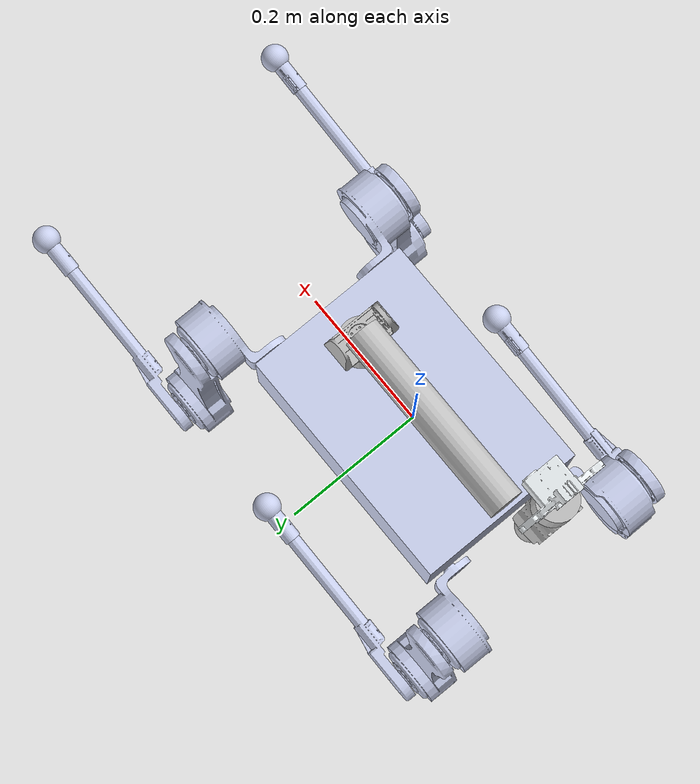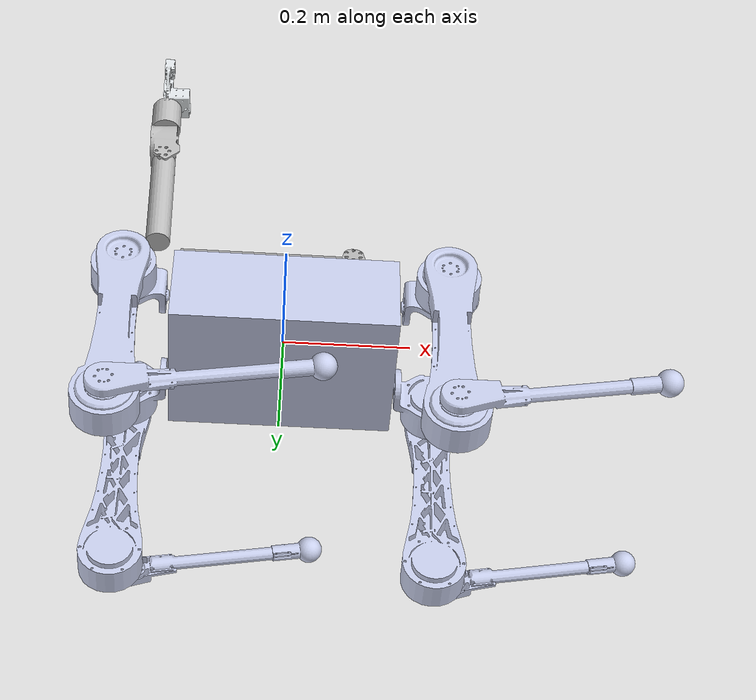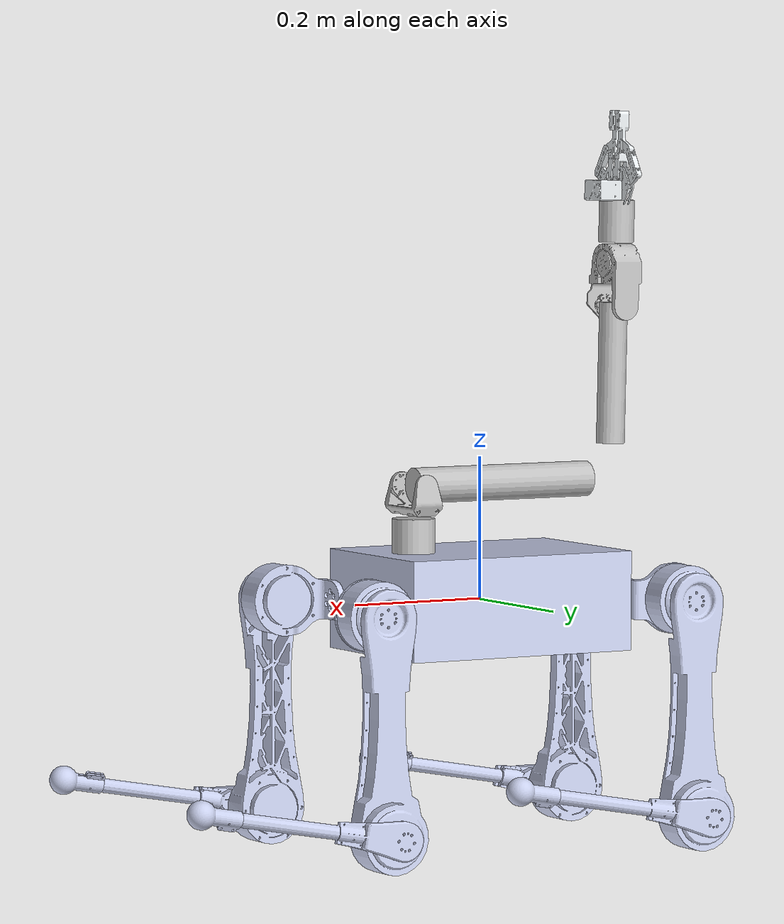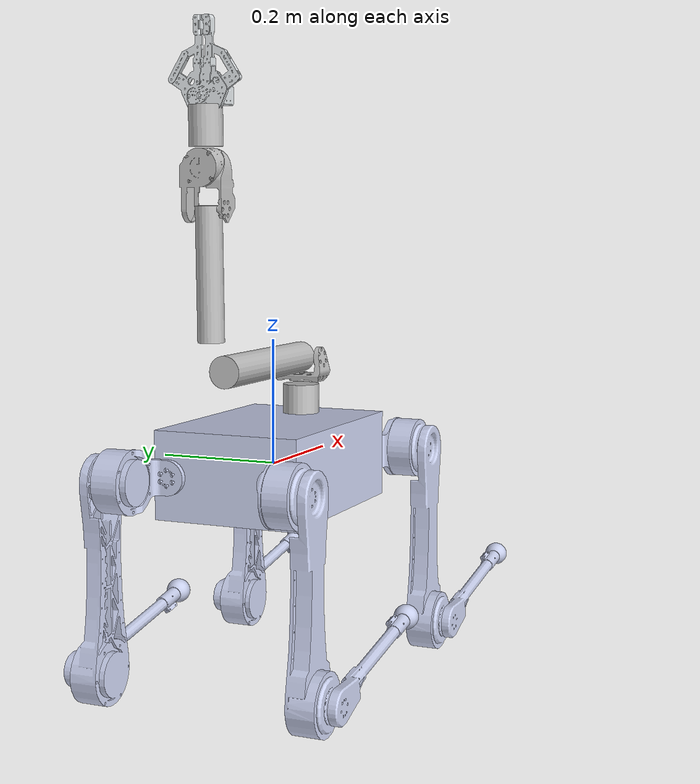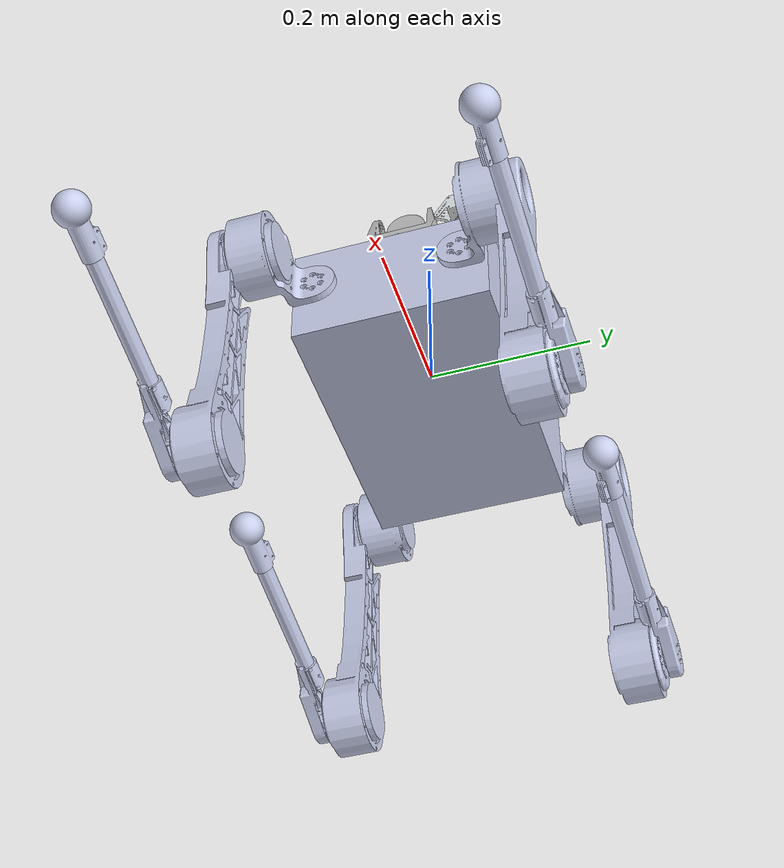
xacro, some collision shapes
<?xml version="1.0"?>

<robot xmlns:xacro="http://www.ros.org/wiki/xacro" name="lion">

  <xacro:include filename="$(find lion_arx_description)/common/transmission.xacro" />
  <xacro:include filename="$(find lion_arx_description)/common/gazebo.xacro" />
  <xacro:include filename="$(find lion_arx_description)/common/imu.xacro" />

  <!--Quadruped
  Model*******************************************************************************************-->
  <link name="base">
    <inertial>
      <origin rpy="0 0 0" xyz="-0.000638750070817345 -0.00672058356158241 -0.00556735378698432" />
      <mass value="8.286" />
      <inertia ixx="0.056529" ixy="-0.001107" ixz="-3.045E-05" iyy="0.14156" iyz="-0.0011531"
        izz="0.17939" />
    </inertial>
    <visual>
      <origin rpy="0 0 0" xyz="0 0 0" />
      <geometry>
        <mesh filename="package://lion_arx_description/meshes/base_link.STL" />
      </geometry>
      <material name="">
        <color rgba="0.792156862745098 0.819607843137255 0.933333333333333 1" />
      </material>
    </visual>
    <collision>
      <origin rpy="0 0 0" xyz="0 0 0" />
      <geometry>
        <box size="0.35 0.24 0.14" />
      </geometry>
    </collision>
  </link>
  <link name="RF_hip">
    <inertial>
      <origin rpy="0 0 0" xyz="-0.0050797 -0.047183 4.172E-05" />
      <mass value="1.095" />
      <inertia ixx="0.0010035" ixy="-0.00021789" ixz="1.433E-06" iyy="0.0014762" iyz="1.005E-06"
        izz="0.0012507" />
    </inertial>
    <visual>
      <origin rpy="0 0 0" xyz="0 0 0" />
      <geometry>
        <mesh filename="package://lion_arx_description/meshes/hip_Link.STL" />
      </geometry>
      <material name="">
        <color rgba="0.79216 0.81961 0.93333 1" />
      </material>
    </visual>
    <collision>
      <origin rpy="${pi/2.0} 0 0" xyz="0.0 -0.05 0" />
      <geometry>
        <cylinder length="0.06" radius="0.05" />
      </geometry>
    </collision>
  </link>
  <joint name="RF_HAA" type="revolute">
    <origin rpy="0.0 0.0 0 " xyz="0.2467 -0.09 0" />
    <parent link="base" />
    <child link="RF_hip" />
    <axis xyz="1 0 0" />
    <limit effort="55" lower="-1.0" upper="1.0" velocity="30" />
  </joint>
  <link name="RF_thigh">
    <inertial>'' <origin rpy="0 0 0" xyz="-2.7705E-05 -0.089684 -0.23198" />
        <mass value="1.556" />
        <inertia
        ixx="0.015631" ixy="-8.61E-07" ixz="-6.078E-06" iyy="0.016183" iyz="0.0004689"
        izz="0.0011163" />
    </inertial>
    <visual>
      <origin rpy="0 0 0" xyz="0 0 0" />
      <geometry>
        <mesh filename="package://lion_arx_description/meshes/thigh_Link.STL" />
      </geometry>
      <material name="">
        <color rgba="0.79216 0.81961 0.93333 1" />
      </material>
    </visual>
    <collision>
      <origin rpy="${pi/2.0} 0 0" xyz="0 -0.09 -0.3" />
      <geometry>
        <cylinder length="0.06" radius="0.05" />
      </geometry>
    </collision>
  </link>
  <joint name="RF_HFE" type="revolute">
    <origin rpy="0 0.0 0" xyz="0 0 0" />
    <parent link="RF_hip" />
    <child link="RF_thigh" />
    <axis xyz="0 1 0" />
    <limit effort="55" lower="-3.0" upper="3.0" velocity="30" />
  </joint>
  <link name="RF_calf">
    <inertial>
      <origin rpy="0 0 0" xyz="2.05E-06 -0.12517 -0.080832" />
      <mass value="0.233" />
      <inertia ixx="0.0033053" ixy="-3.64E-07" ixz="4.028E-06" iyy="0.0033126" iyz="-0.00013194"
        izz="4.3236E-05" />
    </inertial>
    <visual>
      <origin rpy="0 0 0" xyz="0 0 0" />
      <geometry>
        <mesh filename="package://lion_arx_description/meshes/shank_Link.STL" />
      </geometry>
      <material name="">
        <color rgba="0.79216 0.81961 0.93333 1" />
      </material>
    </visual>
    <collision>
      <origin rpy="0 0 0" xyz="0 -0.119 -0.15" />
      <geometry>
        <cylinder length="0.2" radius="0.01" />
      </geometry>
    </collision>
  </link>
  <joint name="RF_KFE" type="revolute">
    <origin rpy="0 0 0" xyz="0 0 -0.3" />
    <parent link="RF_thigh" />
    <child link="RF_calf" />
    <axis xyz="0 1 0" />
    <limit effort="55" lower="-3.0" upper="-0.5" velocity="30" />
  </joint>
  <link name="RF_FOOT">
    <contact>
      <friction_anchor />
      <stiffness value="30000.0" />
      <damping value="1000.0" />
      <spinning_friction value="0.3" />
      <lateral_friction value="3.0" />
    </contact>
    <inertial>
      <origin rpy="0 0 0" xyz="0.0002617 0.00017365 0.0085579" />
      <mass value="0.01" />
      <inertia ixx="0.001983" ixy="0.000245" ixz="0.000013"
        iyy="0.002103" iyz="0.0000015" izz="0.000408" />
    </inertial>
    <visual>
      <origin rpy="0 0 0" xyz="0 0 0" />
      <geometry>
        <mesh filename="package://lion_arx_description/meshes/foot_Link.STL" />
      </geometry>
      <material name="">
        <color rgba="0.79216 0.81961 0.93333 1" />
      </material>
    </visual>
    <collision>
      <origin rpy="0 0 0" xyz="0 0 0.002" />
      <geometry>
        <sphere radius="0.02" />
      </geometry>
    </collision>
  </link>
  <joint name="JointFR_foot" type="fixed">
    <origin rpy="0 0 0" xyz="0 -0.119 -0.3105" />
    <parent link="RF_calf" />
    <child link="RF_FOOT" />
    <axis xyz="0 0 1" />

  </joint>
  <link name="LF_hip">
    <inertial>
      <origin rpy="0 0 0" xyz="-0.0050797 -0.047183 4.172E-05" />
      <mass value="1.095" />
      <inertia ixx="0.0010035" ixy="-0.00021789" ixz="1.433E-06" iyy="0.0014762" iyz="1.005E-06"
        izz="0.0012507" />
    </inertial>
    <visual>
      <origin rpy="0 0 0" xyz="0 0 0" />
      <geometry>
        <mesh filename="package://lion_arx_description/meshes/hip_Link.STL" />
      </geometry>
      <material name="">
        <color rgba="0.79216 0.81961 0.93333 1" />
      </material>
    </visual>
    <collision>
      <origin rpy="${pi/2.0} 0 0" xyz="0.0 -0.05 0" />
      <geometry>
        <cylinder length="0.06" radius="0.05" />
      </geometry>
    </collision>
  </link>
  <joint name="LF_HAA" type="revolute">
    <origin rpy="3.141592653589793 0.0 0 " xyz="0.2467 0.09 0" />
    <parent link="base" />
    <child link="LF_hip" />
    <axis xyz="1 0 0" />
    <limit effort="55" lower="-1.0" upper="1.0" velocity="30" />
  </joint>
  <link name="LF_thigh">
    <inertial>
      <origin rpy="0 0 0" xyz="-2.7705E-05 -0.089684 -0.23198" />
      <mass value="1.556" />
      <inertia ixx="0.015631" ixy="-8.61E-07" ixz="-6.078E-06" iyy="0.016183" iyz="0.0004689"
        izz="0.0011163" />
    </inertial>
    <visual>
      <origin rpy="0 0 0" xyz="0 0 0" />
      <geometry>
        <mesh filename="package://lion_arx_description/meshes/thigh_Link.STL" />
      </geometry>
      <material name="">
        <color rgba="0.79216 0.81961 0.93333 1" />
      </material>
    </visual>
    <collision>
      <origin rpy="${pi/2.0} 0 0" xyz="0 -0.09 -0.3" />
      <geometry>
        <cylinder length="0.06" radius="0.05" />
      </geometry>
    </collision>
  </link>
  <joint name="LF_HFE" type="revolute">
    <origin rpy="0 3.141592653589793 0" xyz="0 0 0" />
    <parent link="LF_hip" />
    <child link="LF_thigh" />
    <axis xyz="0 -1 0" />
    <limit effort="55" lower="-3.0" upper="3.0" velocity="30" />
  </joint>
  <link name="LF_calf">
    <inertial>
      <origin rpy="0 0 0" xyz="2.05E-06 -0.12517 -0.080832" />
      <mass value="0.233" />
      <inertia ixx="0.0033053" ixy="-3.64E-07" ixz="4.028E-06" iyy="0.0033126" iyz="-0.00013194"
        izz="4.3236E-05" />
    </inertial>
    <visual>
      <origin rpy="0 0 0" xyz="0 0 0" />
      <geometry>
        <mesh filename="package://lion_arx_description/meshes/shank_Link.STL" />
      </geometry>
      <material name="">
        <color rgba="0.79216 0.81961 0.93333 1" />
      </material>
    </visual>
    <collision>
      <origin rpy="0 0 0" xyz="0 -0.119 -0.15" />
      <geometry>
        <cylinder length="0.2" radius="0.01" />
      </geometry>
    </collision>
  </link>
  <joint name="LF_KFE" type="revolute">
    <origin rpy="0 0 0" xyz="0 0 -0.3" />
    <parent link="LF_thigh" />
    <child link="LF_calf" />
    <axis xyz="0 -1 0" />
    <limit effort="55" lower="-3.0" upper="-0.5" velocity="30" />
  </joint>
  <link name="LF_FOOT">
    <contact>
      <friction_anchor />
      <stiffness value="30000.0" />
      <damping value="1000.0" />
      <spinning_friction value="0.3" />
      <lateral_friction value="3.0" />
    </contact>
    <inertial>
      <origin rpy="0 0 0" xyz="0.0002617 0.00017365 0.0085579" />
      <mass value="0.01" />
      <inertia ixx="0.001983" ixy="0.000245" ixz="0.000013"
        iyy="0.002103" iyz="0.0000015" izz="0.000408" />
    </inertial>
    <visual>
      <origin rpy="0 0 0" xyz="0 0 0" />
      <geometry>
        <mesh filename="package://lion_arx_description/meshes/foot_Link.STL" />
      </geometry>
      <material name="">
        <color rgba="0.79216 0.81961 0.93333 1" />
      </material>
    </visual>
    <collision>
      <origin rpy="0 0 0" xyz="0 0 0.002" />
      <geometry>
        <sphere radius="0.02" />
      </geometry>
    </collision>
  </link>
  <joint name="JointFL_foot" type="fixed">
    <origin rpy="0 0 0" xyz="0 -0.119 -0.3105" />
    <parent link="LF_calf" />
    <child link="LF_FOOT" />
    <axis xyz="0 0 1" />

  </joint>
  <link name="RH_hip">
    <inertial>
      <origin rpy="0 0 0" xyz="-0.0050797 -0.047183 4.172E-05" />
      <mass value="1.095" />
      <inertia ixx="0.0010035" ixy="-0.00021789" ixz="1.433E-06" iyy="0.0014762" iyz="1.005E-06"
        izz="0.0012507" />
    </inertial>
    <visual>
      <origin rpy="0 0 0" xyz="0 0 0" />
      <geometry>
        <mesh filename="package://lion_arx_description/meshes/hip_Link.STL" />
      </geometry>
      <material name="">
        <color rgba="0.79216 0.81961 0.93333 1" />
      </material>
    </visual>
    <collision>
      <origin rpy="${pi/2.0} 0 0" xyz="0.0 -0.05 0" />
      <geometry>
        <cylinder length="0.06" radius="0.05" />
      </geometry>
    </collision>
  </link>
  <joint name="RH_HAA" type="revolute">
    <origin rpy="0.0 3.141592653589793 0 " xyz="-0.2467 -0.09 0" />
    <parent link="base" />
    <child link="RH_hip" />
    <axis xyz="-1 0 0" />
    <limit effort="55" lower="-1.0" upper="1.0" velocity="30" />
  </joint>
  <link name="RH_thigh">
    <inertial>
      <origin rpy="0 0 0" xyz="-2.7705E-05 -0.089684 -0.23198" />
      <mass value="1.556" />
      <inertia ixx="0.015631" ixy="-8.61E-07" ixz="-6.078E-06" iyy="0.016183" iyz="0.0004689"
        izz="0.0011163" />
    </inertial>
    <visual>
      <origin rpy="0 0 0" xyz="0 0 0" />
      <geometry>
        <mesh filename="package://lion_arx_description/meshes/thigh_Link.STL" />
      </geometry>
      <material name="">
        <color rgba="0.79216 0.81961 0.93333 1" />
      </material>
    </visual>
    <collision>
      <origin rpy="${pi/2.0} 0 0" xyz="0 -0.09 -0.3" />
      <geometry>
        <cylinder length="0.06" radius="0.05" />
      </geometry>
    </collision>
  </link>
  <joint name="RH_HFE" type="revolute">
    <origin rpy="0 3.141592653589793 0" xyz="0 0 0" />
    <parent link="RH_hip" />
    <child link="RH_thigh" />
    <axis xyz="0 1 0" />
    <limit effort="55" lower="-3.0" upper="3.0" velocity="30" />
  </joint>
  <link name="RH_calf">
    <inertial>
      <origin rpy="0 0 0" xyz="2.05E-06 -0.12517 -0.080832" />
      <mass value="0.233" />
      <inertia ixx="0.0033053" ixy="-3.64E-07" ixz="4.028E-06" iyy="0.0033126" iyz="-0.00013194"
        izz="4.3236E-05" />
    </inertial>
    <visual>
      <origin rpy="0 0 0" xyz="0 0 0" />
      <geometry>
        <mesh filename="package://lion_arx_description/meshes/shank_Link.STL" />
      </geometry>
      <material name="">
        <color rgba="0.79216 0.81961 0.93333 1" />
      </material>
    </visual>
    <collision>
      <origin rpy="0 0 0" xyz="0 -0.119 -0.15" />
      <geometry>
        <cylinder length="0.2" radius="0.01" />
      </geometry>
    </collision>
  </link>
  <joint name="RH_KFE" type="revolute">
    <origin rpy="0 0 0" xyz="0 0 -0.3" />
    <parent link="RH_thigh" />
    <child link="RH_calf" />
    <axis xyz="0 1 0" />
    <limit effort="55" lower="-3.0" upper="-0.5" velocity="30" />
  </joint>
  <link name="RH_FOOT">
    <contact>
      <friction_anchor />
      <stiffness value="30000.0" />
      <damping value="1000.0" />
      <spinning_friction value="0.3" />
      <lateral_friction value="3.0" />
    </contact>
    <inertial>
      <origin rpy="0 0 0" xyz="0.0002617 0.00017365 0.0085579" />
      <mass value="0.01" />
      <inertia ixx="0.001983" ixy="0.000245" ixz="0.000013"
        iyy="0.002103" iyz="0.0000015" izz="0.000408" />
    </inertial>
    <visual>
      <origin rpy="0 0 0" xyz="0 0 0" />
      <geometry>
        <mesh filename="package://lion_arx_description/meshes/foot_Link.STL" />
      </geometry>
      <material name="">
        <color rgba="0.79216 0.81961 0.93333 1" />
      </material>
    </visual>
    <collision>
      <origin rpy="0 0 0" xyz="0 0 0.002" />
      <geometry>
        <sphere radius="0.02" />
      </geometry>
    </collision>
  </link>
  <joint name="JointHR_foot" type="fixed">
    <origin rpy="0 0 0" xyz="0 -0.119 -0.3105" />
    <parent link="RH_calf" />
    <child link="RH_FOOT" />
    <axis xyz="0 0 1" />

  </joint>
  <link name="LH_hip">
    <inertial>
      <origin rpy="0 0 0" xyz="-0.0050797 -0.047183 4.172E-05" />
      <mass value="1.095" />
      <inertia ixx="0.0010035" ixy="-0.00021789" ixz="1.433E-06" iyy="0.0014762" iyz="1.005E-06"
        izz="0.0012507" />
    </inertial>
    <visual>
      <origin rpy="0 0 0" xyz="0 0 0" />
      <geometry>
        <mesh filename="package://lion_arx_description/meshes/hip_Link.STL" />
      </geometry>
      <material name="">
        <color rgba="0.79216 0.81961 0.93333 1" />
      </material>
    </visual>
    <collision>
      <origin rpy="${pi/2.0} 0 0" xyz="0.0 -0.05 0" />
      <geometry>
        <cylinder length="0.06" radius="0.05" />
      </geometry>
    </collision>
  </link>
  <joint name="LH_HAA" type="revolute">
    <origin rpy="3.141592653589793 3.141592653589793 0 " xyz="-0.2467 0.09 0" />
    <parent link="base" />
    <child link="LH_hip" />
    <axis xyz="-1 0 0" />
    <limit effort="55" lower="-1.0" upper="1.0" velocity="30" />
  </joint>
  <link name="LH_thigh">
    <inertial>
      <origin rpy="0 0 0" xyz="-2.7705E-05 -0.089684 -0.23198" />
      <mass value="1.556" />
      <inertia ixx="0.015631" ixy="-8.61E-07" ixz="-6.078E-06" iyy="0.016183" iyz="0.0004689"
        izz="0.0011163" />
    </inertial>
    <visual>
      <origin rpy="0 0 0" xyz="0 0 0" />
      <geometry>
        <mesh filename="package://lion_arx_description/meshes/thigh_Link.STL" />
      </geometry>
      <material name="">
        <color rgba="0.79216 0.81961 0.93333 1" />
      </material>
    </visual>
    <collision>
      <origin rpy="${pi/2.0} 0 0" xyz="0 -0.09 -0.3" />
      <geometry>
        <cylinder length="0.06" radius="0.05" />
      </geometry>
    </collision>
  </link>
  <joint name="LH_HFE" type="revolute">
    <origin rpy="0 6.283185307179586 0" xyz="0 0 0" />
    <parent link="LH_hip" />
    <child link="LH_thigh" />
    <axis xyz="0 -1 0" />
    <limit effort="55" lower="-3.0" upper="3.0" velocity="30" />
  </joint>
  <link name="LH_calf">
    <inertial>
      <origin rpy="0 0 0" xyz="2.05E-06 -0.12517 -0.080832" />
      <mass value="0.233" />
      <inertia ixx="0.0033053" ixy="-3.64E-07" ixz="4.028E-06" iyy="0.0033126" iyz="-0.00013194"
        izz="4.3236E-05" />
    </inertial>
    <visual>
      <origin rpy="0 0 0" xyz="0 0 0" />
      <geometry>
        <mesh filename="package://lion_arx_description/meshes/shank_Link.STL" />
      </geometry>
      <material name="">
        <color rgba="0.79216 0.81961 0.93333 1" />
      </material>
    </visual>
    <collision>
      <origin rpy="0 0 0" xyz="0 -0.119 -0.15" />
      <geometry>
        <cylinder length="0.2" radius="0.01" />
      </geometry>
    </collision>
  </link>
  <joint name="LH_KFE" type="revolute">
    <origin rpy="0 0 0" xyz="0 0 -0.3" />
    <parent link="LH_thigh" />
    <child link="LH_calf" />
    <axis xyz="0 -1 0" />
    <limit effort="55" lower="-3.0" upper="-0.5" velocity="30" />
  </joint>
  <link name="LH_FOOT">
    <contact>
      <friction_anchor />
      <stiffness value="30000.0" />
      <damping value="1000.0" />
      <spinning_friction value="0.3" />
      <lateral_friction value="3.0" />
    </contact>
    <inertial>
      <origin rpy="0 0 0" xyz="0.0002617 0.00017365 0.0085579" />
      <mass value="0.01" />
      <inertia ixx="0.001983" ixy="0.000245" ixz="0.000013"
        iyy="0.002103" iyz="0.0000015" izz="0.000408" />
    </inertial>
    <visual>
      <origin rpy="0 0 0" xyz="0 0 0" />
      <geometry>
        <mesh filename="package://lion_arx_description/meshes/foot_Link.STL" />
      </geometry>
      <material name="">
        <color rgba="0.79216 0.81961 0.93333 1" />
      </material>
    </visual>
    <collision>
      <origin rpy="0 0 0" xyz="0 0 0.002" />
      <geometry>
        <sphere radius="0.02" />
      </geometry>
    </collision>
  </link>
  <joint name="JointHL_foot" type="fixed">
    <origin rpy="0 0 0" xyz="0 -0.119 -0.3105" />
    <parent link="LH_calf" />
    <child link="LH_FOOT" />
    <axis xyz="0 0 1" />

  </joint>
  <!-- Arm Model
  ********************************************************************************************************  -->
  <link name="arm_base_link">
    <inertial>
      <origin
        xyz="-2.9956E-05 3.0541E-05 0.027289"
        rpy="0 0 0" />
      <mass
        value="0.44061" />
      <inertia
        ixx="0.00017"
        ixy="0.00000"
        ixz="0.00000"
        iyy="0.00018"
        iyz="0.00000"
        izz="0.00016" />
    </inertial>
    <visual>
      <origin
        xyz="0 0 0"
        rpy="0 0 0" />
      <geometry>
        <mesh
          filename="package://lion_arx_description/meshes/arm_base_link.STL" />
      </geometry>
      <material
        name="">
        <color
          rgba="0.75294 0.75294 0.75294 1" />
      </material>
    </visual>
    <collision>
      <origin rpy="0 0 0" xyz="0 0.0 0.03" />
      <geometry>
        <cylinder length="0.05" radius="0.03" />
      </geometry>
    </collision>
  </link>
  <joint name="arm_fix" type="fixed">
    <origin
      xyz="0.1075 0 0.0635"
      rpy="0 0 0" />
    <parent
      link="base" />
    <child
      link="arm_base_link" />
  </joint>
  <link name="shoulder_link">
    <inertial>
      <origin
        xyz="-0.00012207 -6.5868E-06 0.016529"
        rpy="0 0 0" />
      <mass
        value="0.078442" />
      <inertia
        ixx="0.00009"
        ixy="0.00000"
        ixz="0.00000"
        iyy="0.00003"
        iyz="0.00000"
        izz="0.00009" />
    </inertial>
    <visual>
      <origin
        xyz="0 0 0"
        rpy="0 0 0" />
      <geometry>
        <mesh
          filename="package://lion_arx_description/meshes/link1.STL" />
      </geometry>
      <material
        name="">
        <color
          rgba="0.75294 0.75294 0.75294 1" />
      </material>
    </visual>
    <collision>
      <origin
        xyz="0 0 0"
        rpy="0 0 0" />
      <geometry>
        <cylinder length="0.01" radius="0.03" />
      </geometry>
    </collision>
  </link>
  <joint name="joint1"
    type="revolute">
    <origin
      xyz="0 0 0.0603"
      rpy="0 0 0" />
    <parent
      link="arm_base_link" />
    <child
      link="shoulder_link" />
    <axis
      xyz="0 0 1" />
    <limit
      lower="-1.57"
      upper="1.57"
      effort="25.0"
      velocity="10.0" />
    <dynamics damping="0.1" friction="0.01"/>
  </joint>
  <link name="upper_arm_link">
    <inertial>
      <origin
        xyz="-0.13238 0.0021952 0.00011182"
        rpy="0 0 0" />
      <mass
        value="1.073" />
      <inertia
        ixx="0.00050"
        ixy="0.00000"
        ixz="-0.00004"
        iyy="0.01596"
        iyz="0.00000"
        izz="0.01602" />
    </inertial>
    <visual>
      <origin
        xyz="0 0 0"
        rpy="0 0 0" />
      <geometry>
        <mesh
          filename="package://lion_arx_description/meshes/link2.STL" />
      </geometry>
      <material
        name="">
        <color
          rgba="0.75294 0.75294 0.75294 1" />
      </material>
    </visual>
    <collision>
      <origin rpy="0 ${pi/2.0} 0" xyz="-0.14 0.0 0.0" />
      <geometry>
        <cylinder length="0.28" radius="0.025" />
      </geometry>
    </collision>
  </link>
  <joint name="joint2"
    type="revolute">
    <origin
      xyz="0 0 0.0402"
      rpy="0 0 0" />
    <parent
      link="shoulder_link" />
    <child
      link="upper_arm_link" />
    <axis
      xyz="0 1 0" />
    <limit
      lower="0."
      upper="3.14"
      effort="25.0"
      velocity="10." />
    <dynamics damping="0.1" friction="0.01"/>
  </joint>
  <link name="elbow_link">
    <inertial>
      <origin
        xyz="0.18794 0.0016321 -0.051557"
        rpy="0 0 0" />
      <mass
        value="0.50518" />
      <inertia
        ixx="0.00037"
        ixy="-0.00001"
        ixz="-0.00039"
        iyy="0.00393"
        iyz="0.00001"
        izz="0.00390" />
    </inertial>
    <visual>
      <origin
        xyz="0 0 0"
        rpy="0 0 0" />
      <geometry>
        <mesh
          filename="package://lion_arx_description/meshes/link3.STL" />
      </geometry>
      <material
        name="">
        <color
          rgba="0.75294 0.75294 0.75294 1" />
      </material>
    </visual>
    <collision>
      <origin rpy="0 ${pi/2.0} 0" xyz="0.15 0.0 -0.055" />
      <geometry>
        <cylinder length="0.2" radius="0.02" />
      </geometry>
    </collision>
  </link>
  <joint name="joint3"
    type="revolute">
    <origin
      xyz="-0.264 0 0"
      rpy="-3.1416 0 0" />
    <parent
      link="upper_arm_link" />
    <child
      link="elbow_link" />
    <axis
      xyz="0 1 0" />
    <limit
      lower="0.05"
      upper="3.14"
      effort="25."
      velocity="10." />
    <dynamics damping="0.1" friction="0.01"/>
  </joint>
  <link name="lower_arm_link">
    <inertial>
      <origin
        xyz="0.054496 -0.00085704 0.0020301"
        rpy="0 0 0" />
      <mass
        value="0.34332" />
      <inertia
        ixx="0.00018"
        ixy="-0.00001"
        ixz="0.00000"
        iyy="0.00022"
        iyz="0.00001"
        izz="0.00026" />
    </inertial>
    <visual>
      <origin
        xyz="0 0 0"
        rpy="0 0 0" />
      <geometry>
        <mesh
          filename="package://lion_arx_description/meshes/link4.STL" />
      </geometry>
      <material
        name="">
        <color
          rgba="0.75294 0.75294 0.75294 1" />
      </material>
    </visual>
    <collision>
      <origin rpy="${pi/2.0} 0 0" xyz="0.06 0.0 -0.0" />
      <geometry>
        <cylinder length="0.06" radius="0.025" />
      </geometry>
    </collision>
  </link>
  <joint name="joint4"
    type="revolute">
    <origin
      xyz="0.245 0 -0.056"
      rpy="0 0 0" />
    <parent
      link="elbow_link" />
    <child
      link="lower_arm_link" />
    <axis
      xyz="0 1 0" />
    <limit
      lower="-1.3"
      upper="1.3"
      effort="15.0"
      velocity="10." />
    <dynamics damping="0.1" friction="0.2"/>
  </joint>
  <link name="wrist_link">
    <inertial>
      <origin
        xyz="0.053308 5.0047E-05 -0.0012315"
        rpy="0 0 0" />
      <mass
        value="0.33126" />
      <inertia
        ixx="0.00017"
        ixy="0.00000"
        ixz="-0.00001"
        iyy="0.00024"
        iyz="0.00000"
        izz="0.00021" />
    </inertial>
    <visual>
      <origin
        xyz="0 0 0"
        rpy="0 0 0" />
      <geometry>
        <mesh
          filename="package://lion_arx_description/meshes/link5.STL" />
      </geometry>
      <material
        name="">
        <color
          rgba="0.75294 0.75294 0.75294 1" />
      </material>
    </visual>
    <collision>
      <origin rpy="0 ${pi/2.0} 0" xyz="0.06 0.0 -0.0" />
      <geometry>
        <cylinder length="0.06" radius="0.025" />
      </geometry>
    </collision>
  </link>
  <joint name="joint5"
    type="revolute">
    <origin
      xyz="0.06 -0.002 0.0005"
      rpy="0 0 0" />
    <parent
      link="lower_arm_link" />
    <child
      link="wrist_link" />
    <axis
      xyz="0 0 1" />
    <limit
      lower="-1.3"
      upper="1.3"
      effort="15.0"
      velocity="10.0" />
    <dynamics damping="0.1" friction="0.2"/>
  </joint>
  <link name="hand_link">
    <inertial>
      <origin
        xyz="0.0057186 2.3419E-17 0"
        rpy="0 0 0" />
      <mass
        value="0.022383" />
      <inertia
        ixx="0.00000"
        ixy="0.00000"
        ixz="0.00000"
        iyy="0.00000"
        iyz="0.00000"
        izz="0.00000" />
    </inertial>
    <visual>
      <origin
        xyz="0 0 0"
        rpy="0 0 0" />
      <geometry>
        <mesh
          filename="package://lion_arx_description/meshes/link6.STL" />
      </geometry>
      <material
        name="">
        <color
          rgba="0.89804 0.91765 0.92941 1" />
      </material>
    </visual>
    <collision>
      <origin
        xyz="0.07 0 0"
        rpy="0 ${pi/2.0} 0" />
      <geometry>
        <cylinder length="0.14" radius="0.01" />
      </geometry>
    </collision>
  </link>
  <joint name="joint6"
    type="revolute">
    <origin
      xyz="0.078 0 -0.0005"
      rpy="3.1416 0 0" />
    <parent
      link="wrist_link" />
    <child
      link="hand_link" />
    <axis
      xyz="1 0 0" />
    <limit
      lower="-10."
      upper="10."
      effort="15."
      velocity="10." />
    <dynamics damping="0.1" friction="0.2"/>
  </joint>

  <xacro:IMU connected_to="base" imu_name="unitree_imu" xyz="0. 0. 0." rpy="0. 0. 0." />
  <xacro:leg_transmission prefix="RF" />
  <xacro:leg_transmission prefix="LF" />
  <xacro:leg_transmission prefix="RH" />
  <xacro:leg_transmission prefix="LH" />

  <xacro:arm_transmission num="1" />
  <xacro:arm_transmission num="2" />
  <xacro:arm_transmission num="3" />
  <xacro:arm_transmission num="4" />
  <xacro:arm_transmission num="5" />
  <xacro:arm_transmission num="6" />

</robot>

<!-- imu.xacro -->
<robot xmlns:xacro="http://www.ros.org/wiki/xacro" name="imu">
  <xacro:macro name="IMU" params="connected_to imu_name xyz:='0 0 0' rpy:='0 0 0' ">
    <!-- Imu is fixed to the base link -->
    <joint name="${imu_name}_joint" type="fixed">
      <origin xyz="${xyz}" rpy="${rpy}" />
      <parent link="${connected_to}" />
      <child link="${imu_name}" />
    </joint>
    <!-- Imu link -->
    <link name="${imu_name}">
      <inertial>
        <mass value="0.01" />
        <origin rpy="0 0 0" xyz="0 0 0" />
        <inertia ixx="0.000001" ixy="0" ixz="0" iyy="0.000001" iyz="0" izz="0.000001" />
      </inertial>
      <visual>
        <origin rpy="0 0 0" xyz="0 0 0" />
        <geometry>
          <box size="0.015 0.015 0.004" />
        </geometry>
      </visual>
      <material name="orange">
        <color rgba="255 108 10 255" />
      </material>
    </link>
    <gazebo reference="${imu_name}">
      <material>Gazebo/Orange</material>
    </gazebo>
    <gazebo reference="${imu_name}_joint">
      <disableFixedJointLumping>true</disableFixedJointLumping>
    </gazebo>
  </xacro:macro>
</robot>
